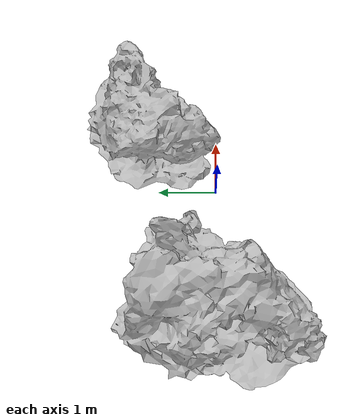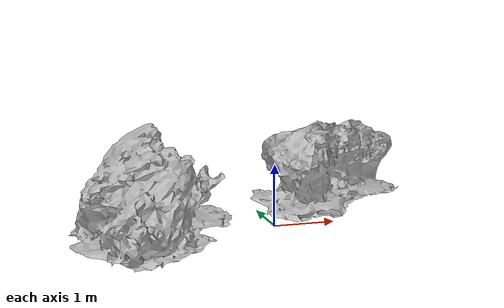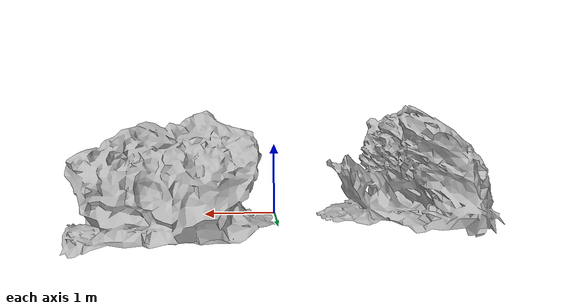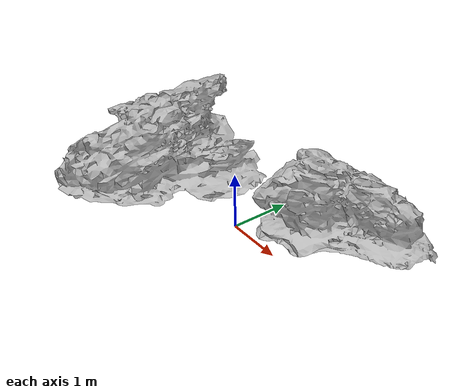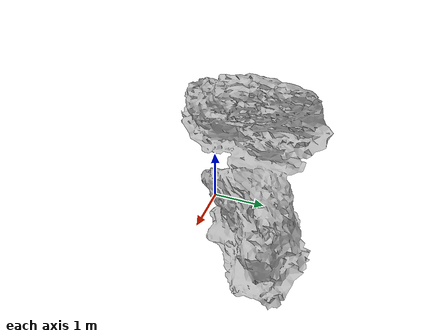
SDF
<?xml version='1.0'?>
<sdf version='1.4'>
  <model name="jaggedrock">
    <static>true</static>
    <link name="link">
        <inertial>
            <mass>1</mass>
            <inertia>
              <ixx>0.166667</ixx>
              <ixy>0</ixy>
              <ixz>0</ixz>
              <iyy>0.166667</iyy>
              <iyz>0</iyz>
              <izz>0.166667</izz>
            </inertia>
            <pose frame=''>0 0 0 0 -0 0</pose>
         </inertial>

         <self_collide>1</self_collide>
         <kinematic>0</kinematic>
         <gravity>0</gravity>

          <collision name="collision">
            <geometry>
              <mesh>
                <uri>model://jaggedrock/meshes/jaggedrock_texture.dae</uri>
              </mesh>
            </geometry>
            <surface>
              <friction>
                <ode>
                  <mu>1</mu>
                  <mu2>1</mu2>
                  <fdir1>0 0 0</fdir1>
                  <slip1>0</slip1>
                  <slip2>0</slip2>
                </ode>
                <torsional>
                  <coefficient>1</coefficient>
                  <patch_radius>0</patch_radius>
                  <surface_radius>0</surface_radius>
                  <use_patch_radius>1</use_patch_radius>
                  <ode>
                    <slip>0</slip>
                  </ode>
                </torsional>
              </friction>
              <bounce>
                <restitution_coefficient>0</restitution_coefficient>
                <threshold>1e+06</threshold>
              </bounce>
              <contact>
                <collide_without_contact>0</collide_without_contact>
                <collide_without_contact_bitmask>1</collide_without_contact_bitmask>
                <collide_bitmask>1</collide_bitmask>
                <ode>
                  <soft_cfm>0</soft_cfm>
                  <soft_erp>0.2</soft_erp>
                  <kp>1e+13</kp>
                  <kd>1</kd>
                  <max_vel>0.01</max_vel>
                  <min_depth>0</min_depth>
                </ode>
                <bullet>
                  <split_impulse>1</split_impulse>
                  <split_impulse_penetration_threshold>-0.01</split_impulse_penetration_threshold>
                  <soft_cfm>0</soft_cfm>
                  <soft_erp>0.2</soft_erp>
                  <kp>1e+13</kp>
                  <kd>1</kd>
                </bullet>
              </contact>
            </surface>
          </collision>

          <visual name="visual">
            <geometry>
              <mesh>
                <uri>model://jaggedrock/meshes/jaggedrock_texture.dae</uri>
              </mesh>
            </geometry>
          </visual>
    </link>
  </model>
</sdf>
